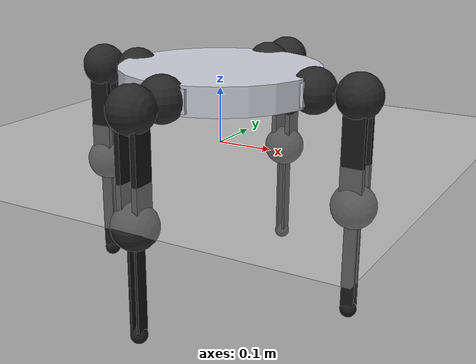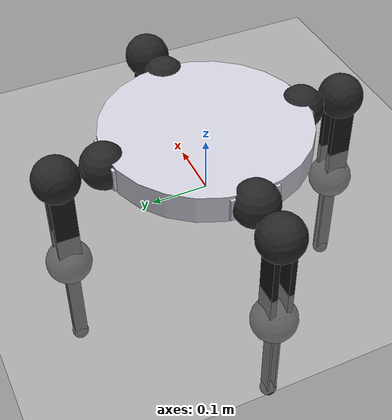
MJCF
<mujoco model="Tarantulin_KeyframeSelector">
  <compiler angle="radian"/>

  <option iterations="12" ls_iterations="4"/>

  <size nkey="5"/>

  <default>
    <joint limited="true" armature="0.02" damping="0.1"/>
    <geom friction="1 0.1 0.1" solref="0.003" solimp="0.9 0.95 0.01" density="700"/>
    <general ctrlrange="-1 1" gear="10 0 0 0 0 0"/>
  </default>

  <asset>
    <texture type="skybox" colorspace="auto" name="white_sky" builtin="flat" rgb1="1 1 1" rgb2="1 1 1" width="512" height="3072"/>
  </asset>

  <worldbody>
    <geom name="sueloMundo" size="5 5 0.1" type="plane" rgba="0.9 0.9 0.9 1"/>
    <body name="TARANTULIN" pos="0 0 0.115">
      <joint name="E_00" type="free"/>
      <geom name="planchaCentral" size="0.18 0.025" type="cylinder" contype="0" conaffinity="0" mass="0.6" rgba="0.8 0.8 0.85 1"/>
      <geom name="E_10" size="0.025 0.0425 0.02" pos="0.155 0 0" type="box" mass="0.0488" rgba="0.8 0.8 0.85 1"/>
      <geom name="E_20" size="0.0425 0.025 0.02" pos="0 0.155 0" type="box" mass="0.0488" rgba="0.8 0.8 0.85 1"/>
      <geom name="E_30" size="0.025 0.0425 0.02" pos="-0.155 0 0" type="box" mass="0.0488" rgba="0.8 0.8 0.85 1"/>
      <geom name="E_40" size="0.0425 0.025 0.02" pos="0 -0.155 0" type="box" mass="0.0488" rgba="0.8 0.8 0.85 1"/>
      <body name="Pata1" pos="0.18 0 0">
        <joint name="ID_11_q1" pos="0 0 0" axis="0 0 1" range="-1.74533 1.74533"/>
        <geom name="ID_11_geom" size="0.04" mass="0.395" rgba="0.15 0.15 0.15 1"/>
        <geom name="E_11" size="0.01 0.04" pos="0.04 0 0" quat="0.707107 0 -0.707107 0" type="capsule" mass="0.0955" rgba="0.1 0.1 0.1 1"/>
        <body name="E_12" pos="0.08 0 0">
          <joint name="ID_12_q2" pos="0 0 0" axis="0 -1 0" ref="30" range="-1.74533 1.74533"/>
          <geom name="ID_12_geom" size="0.04" quat="0.707107 0.707107 0 0" mass="0.395" rgba="0.15 0.15 0.15 1"/>
          <geom name="E_12_A" size="0.02 0.005 0.094" pos="0 0.015 -0.094" type="box" mass="0.05445" rgba="0.1 0.1 0.1 1"/>
          <geom name="E_12_B" size="0.02 0.005 0.094" pos="0 -0.015 -0.094" type="box" mass="0.05445" rgba="0.1 0.1 0.1 1"/>
          <body name="E_13" pos="0 0 -0.188">
            <joint name="ID_13_q3" pos="0 0 0" axis="0 -1 0" ref="-110" range="-1.91986 1.91986"/>
            <geom name="E_13_geom" size="0.04" quat="0.707107 0.707107 0 0" mass="0.395" rgba="0.15 0.15 0.15 1"/>
            <geom name="E_13_A" size="0.012 0.002 0.0925" pos="0 0.007 -0.0925" type="box" mass="0.0713" rgba="0.1 0.1 0.1 1"/>
            <geom name="E_13_B" size="0.012 0.002 0.0925" pos="0 -0.007 -0.0925" type="box" mass="0.0713" rgba="0.1 0.1 0.1 1"/>
            <body name="E_14" pos="0 0 -0.192">
              <geom name="E_14_geom" size="0.015" friction="2" mass="0.0127" rgba="0.1 0.1 0.1 1"/>
            </body>
          </body>
        </body>
      </body>
      <body name="Pata2" pos="0 0.18 0">
        <joint name="ID_21_q1" pos="0 0 0" axis="0 0 1" range="-1.74533 1.74533"/>
        <geom name="ID_21_geom" size="0.04" mass="0.395" rgba="0.15 0.15 0.15 1"/>
        <geom name="E_21" size="0.01 0.04" pos="0 0.04 0" quat="0.707107 0.707107 0 0" type="capsule" mass="0.0955" rgba="0.1 0.1 0.1 1"/>
        <body name="E_22" pos="0 0.08 0">
          <joint name="ID_22_q2" pos="0 0 0" axis="1 0 0" ref="30" range="-1.74533 1.74533"/>
          <geom name="ID_22_geom" size="0.04" quat="0.707107 0 0.707107 0" mass="0.395" rgba="0.15 0.15 0.15 1"/>
          <geom name="E_22_A" size="0.005 0.02 0.094" pos="0.015 0 -0.094" type="box" mass="0.05445" rgba="0.1 0.1 0.1 1"/>
          <geom name="E_22_B" size="0.005 0.02 0.094" pos="-0.015 0 -0.094" type="box" mass="0.05445" rgba="0.1 0.1 0.1 1"/>
          <body name="E_23" pos="0 0 -0.188">
            <joint name="ID_23_q3" pos="0 0 0" axis="1 0 0" ref="-110" range="-1.91986 1.91986"/>
            <geom name="E_23_geom" size="0.04" quat="0.707107 0 0.707107 0" mass="0.395" rgba="0.15 0.15 0.15 1"/>
            <geom name="E_23_A" size="0.002 0.012 0.0925" pos="0.007 0 -0.0925" type="box" mass="0.0713" rgba="0.1 0.1 0.1 1"/>
            <geom name="E_23_B" size="0.002 0.012 0.0925" pos="-0.007 0 -0.0925" type="box" mass="0.0713" rgba="0.1 0.1 0.1 1"/>
            <body name="E_24" pos="0 0 -0.192">
              <geom name="E_24_geom" size="0.015" friction="2" mass="0.0127" rgba="0.1 0.1 0.1 1"/>
            </body>
          </body>
        </body>
      </body>
      <body name="Pata3" pos="-0.18 0 0">
        <joint name="ID_31_q1" pos="0 0 0" axis="0 0 1" range="-1.74533 1.74533"/>
        <geom name="ID_31_geom" size="0.04" mass="0.395" rgba="0.15 0.15 0.15 1"/>
        <geom name="E_31" size="0.01 0.04" pos="-0.04 0 0" quat="0.707107 0 0.707107 0" type="capsule" mass="0.0955" rgba="0.1 0.1 0.1 1"/>
        <body name="E_32" pos="-0.08 0 0">
          <joint name="ID_32_q2" pos="0 0 0" axis="0 1 0" ref="30" range="-1.74533 1.74533"/>
          <geom name="ID_32_geom" size="0.04" quat="0.707107 -0.707107 0 0" mass="0.395" rgba="0.15 0.15 0.15 1"/>
          <geom name="E_32_plate1" size="0.02 0.005 0.094" pos="0 0.015 -0.094" type="box" mass="0.05445" rgba="0.1 0.1 0.1 1"/>
          <geom name="E_32_plate2" size="0.02 0.005 0.094" pos="0 -0.015 -0.094" type="box" mass="0.05445" rgba="0.1 0.1 0.1 1"/>
          <body name="E_33" pos="0 0 -0.188">
            <joint name="ID_33_q3" pos="0 0 0" axis="0 1 0" ref="-110" range="-1.91986 1.91986"/>
            <geom name="E_33_geom" size="0.04" quat="0.707107 -0.707107 0 0" mass="0.395" rgba="0.15 0.15 0.15 1"/>
            <geom name="E_33_plate1" size="0.012 0.002 0.0925" pos="0 0.007 -0.0925" type="box" mass="0.0713" rgba="0.1 0.1 0.1 1"/>
            <geom name="E_33_plate2" size="0.012 0.002 0.0925" pos="0 -0.007 -0.0925" type="box" mass="0.0713" rgba="0.1 0.1 0.1 1"/>
            <body name="E_34" pos="0 0 -0.192">
              <geom name="E_34_geom" size="0.015" friction="2" mass="0.0127" rgba="0.1 0.1 0.1 1"/>
            </body>
          </body>
        </body>
      </body>
      <body name="Pata4" pos="0 -0.18 0">
        <joint name="ID_41_q1" pos="0 0 0" axis="0 0 1" range="-1.74533 1.74533"/>
        <geom name="ID_41_geom" size="0.04" mass="0.395" rgba="0.15 0.15 0.15 1"/>
        <geom name="E_41" size="0.01 0.04" pos="0 -0.04 0" quat="0.707107 -0.707107 0 0" type="capsule" mass="0.0955" rgba="0.1 0.1 0.1 1"/>
        <body name="E_42" pos="0 -0.08 0">
          <joint name="ID_42_q2" pos="0 0 0" axis="-1 0 0" ref="30" range="-1.74533 1.74533"/>
          <geom name="ID_42_geom" size="0.04" quat="0.707107 0 -0.707107 0" mass="0.395" rgba="0.15 0.15 0.15 1"/>
          <geom name="E_42_A" size="0.005 0.02 0.094" pos="0.015 0 -0.094" type="box" mass="0.05445" rgba="0.1 0.1 0.1 1"/>
          <geom name="E_42_B" size="0.005 0.02 0.094" pos="-0.015 0 -0.094" type="box" mass="0.05445" rgba="0.1 0.1 0.1 1"/>
          <body name="E_43" pos="0 0 -0.188">
            <joint name="ID_43_q3" pos="0 0 0" axis="-1 0 0" ref="-110" range="-1.91986 1.91986"/>
            <geom name="E_43_geom" size="0.04" quat="0.707107 0 -0.707107 0" mass="0.395" rgba="0.15 0.15 0.15 1"/>
            <geom name="E_43_plate1" size="0.002 0.012 0.0925" pos="0.007 0 -0.0925" type="box" mass="0.0713" rgba="0.1 0.1 0.1 1"/>
            <geom name="E_43_plate2" size="0.002 0.012 0.0925" pos="-0.007 0 -0.0925" type="box" mass="0.0713" rgba="0.1 0.1 0.1 1"/>
            <body name="E_44" pos="0 0 -0.192">
              <geom name="E_44_geom" size="0.015" friction="2" mass="0.0127" rgba="0.1 0.1 0.1 1"/>
            </body>
          </body>
        </body>
      </body>
    </body>
  </worldbody>

  <actuator>
    <general name="M_ID11" joint="ID_11_q1"/>
    <general name="M_ID12" joint="ID_12_q2"/>
    <general name="M_ID13" joint="ID_13_q3"/>
    <general name="M_ID21" joint="ID_21_q1"/>
    <general name="M_ID22" joint="ID_22_q2"/>
    <general name="M_ID23" joint="ID_23_q3"/>
    <general name="M_ID31" joint="ID_31_q1"/>
    <general name="M_ID32" joint="ID_32_q2"/>
    <general name="M_ID33" joint="ID_33_q3"/>
    <general name="M_ID41" joint="ID_41_q1"/>
    <general name="M_ID42" joint="ID_42_q2"/>
    <general name="M_ID43" joint="ID_43_q3"/>
  </actuator>

  <keyframe>
    <key name="A_q2=30_q3=-110"/>
    <key name="B_q2=30_q3=-120" qpos="0 0 0.113 1 0 0 0 0 30 -120 0 30 -120 0 30 -120 0 30 -120"/>
    <key name="C_q2=35_q3=-110" qpos="0 0 0.093 1 0 0 0 0 35 -110 0 35 -110 0 35 -110 0 35 -110"/>
    <key name="D_q2=40_q3=-115" qpos="0 0 0.08 1 0 0 0 0 40 -115 0 40 -115 0 40 -115 0 40 -115"/>
    <key name="E_q2=25_q3=-105" qpos="0 0 0.122 1 0 0 0 0 25 -105 0 25 -105 0 25 -105 0 25 -105"/>
  </keyframe>
</mujoco>
